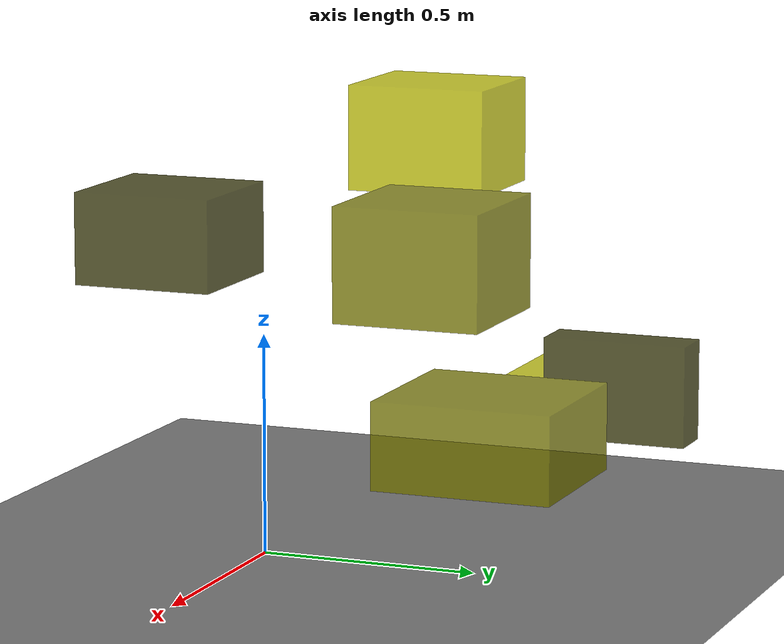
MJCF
<?xml version="1.0"?>
<mujoco model="obstacle_scene">
  <compiler angle="radian" coordinate="local"/>
  <option timestep="0.001" gravity="0 0 -9.81"/>

  <asset>
    <material name="obstacle_mat" rgba="0.8 0.8 0.0 0.8"/>
    <material name="ground_mat" rgba="0.5 0.5 0.5 1"/>
  </asset>

  <worldbody>
    <!-- Ground plane -->
    <geom name="ground" type="plane" size="3 3 0.1" material="ground_mat"/>

    <!-- Obstacles -->
    <body name="obstacle_0" pos="-0.338589 -0.386242 0.653358">
      <geom name="obs_0" type="box" size="0.160447 0.168352 0.108501" rgba="0.2 0.2 0.0 0.8"/>
    </body>
    <body name="obstacle_1" pos="0.466034 0.706936 0.422758">
      <geom name="obs_1" type="box" size="0.180110 0.192048 0.092369" rgba="0.5 0.5 0.0 0.8"/>
    </body>
    <body name="obstacle_2" pos="-0.838987 0.440840 0.252389">
      <geom name="obs_2" type="box" size="0.173395 0.125486 0.044968" rgba="0.8 0.8 0.0 0.8"/>
    </body>
    <body name="obstacle_3" pos="-0.263586 0.749176 0.384779">
      <geom name="obs_3" type="box" size="0.054065 0.163489 0.112897" rgba="0.2 0.2 0.0 0.8"/>
    </body>
    <body name="obstacle_4" pos="0.684980 0.663478 0.826226">
      <geom name="obs_4" type="box" size="0.153253 0.151765 0.116628" rgba="0.5 0.5 0.0 0.8"/>
    </body>
    <body name="obstacle_5" pos="-0.312563 0.292157 0.926240">
      <geom name="obs_5" type="box" size="0.142339 0.158944 0.118105" rgba="0.8 0.8 0.0 0.8"/>
    </body>
  </worldbody>
</mujoco>
